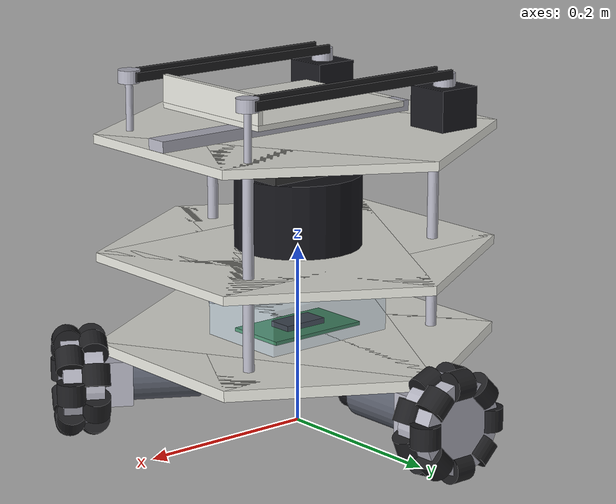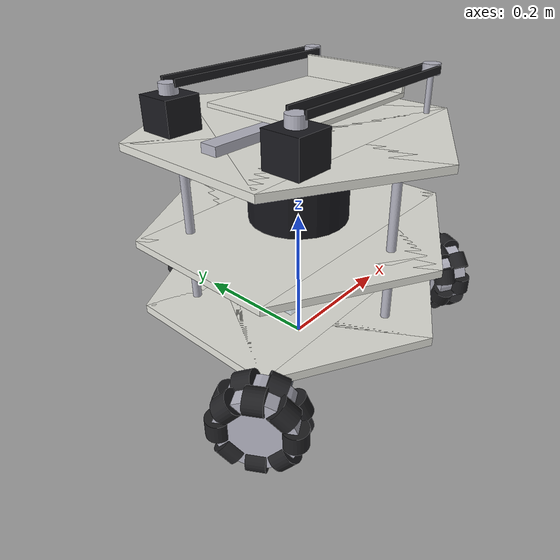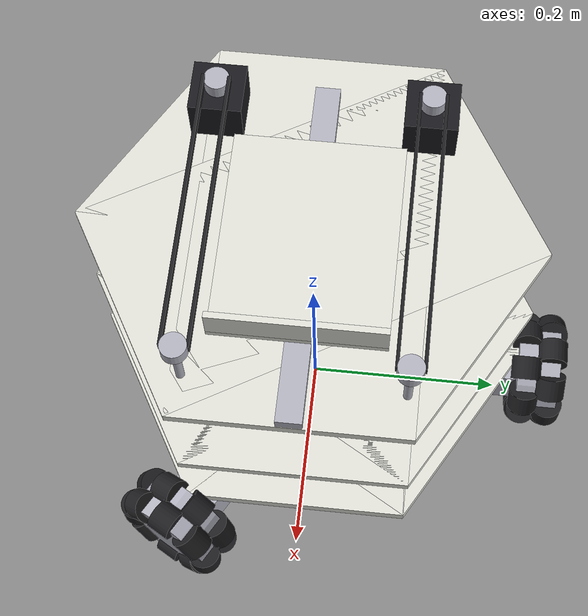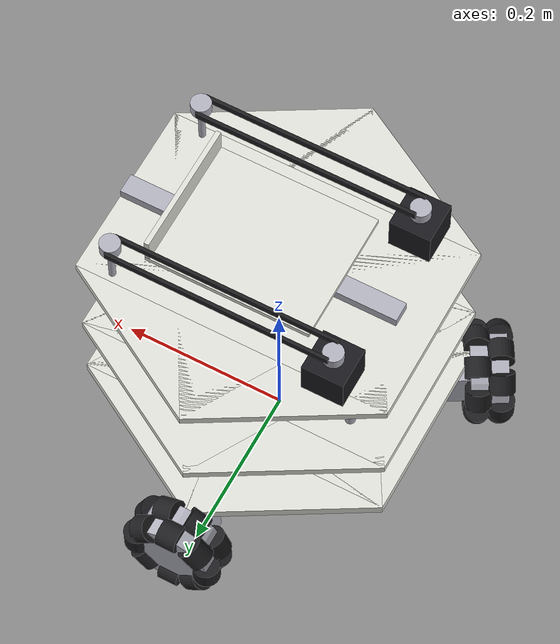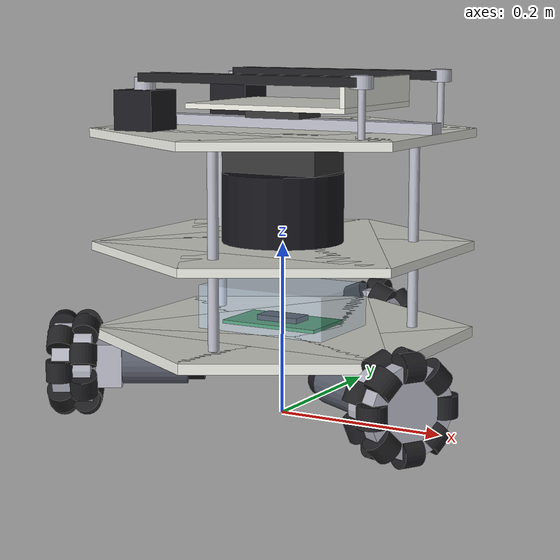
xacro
<?xml version="1.0"?>
<robot xmlns:xacro="http://www.ros.org/wiki/xacro" name="kiwi_robot">

  <!-- ==================== PROPERTIES ==================== -->
  <!-- Drive geometry (DO NOT CHANGE without updating omni_drive_node.py) -->
  <xacro:property name="wheel_radius" value="0.06"/>
  <xacro:property name="wheel_width" value="0.05"/>
  <xacro:property name="wheel_mass" value="0.9"/>
  <xacro:property name="wheel_offset" value="0.24"/>

  <!-- Omni wheel detail (visual only; collision stays a plain cylinder) -->
  <xacro:property name="roller_radius" value="0.016"/>
  <xacro:property name="roller_length" value="0.024"/>
  <xacro:property name="rollers_per_row" value="8"/>
  <xacro:property name="roller_row_dz" value="0.013"/>
  <xacro:property name="roller_ring_radius" value="${wheel_radius - roller_radius}"/>

  <!-- Hex plates (circumradius; vertices point at the wheels) -->
  <xacro:property name="plate_radius" value="0.22"/>
  <xacro:property name="base_plate_t" value="0.012"/>
  <xacro:property name="mid_plate_t" value="0.010"/>
  <xacro:property name="top_plate_t" value="0.010"/>
  <xacro:property name="chassis_mass" value="5.0"/>   <!-- base plate + battery/electronics -->

  <!-- Vertical layout, all measured from base_link origin (= base plate center) -->
  <xacro:property name="axle_drop" value="0.036"/>     <!-- wheel axle is this far below base_link -->
  <xacro:property name="mid_z" value="0.101"/>
  <xacro:property name="top_z" value="0.231"/>
  <xacro:property name="standoff_len" value="0.22"/>
  <xacro:property name="standoff_z" value="0.116"/>
  <xacro:property name="standoff_pos_r" value="0.15"/>
  <xacro:property name="standoff_radius" value="0.006"/>

  <!-- LiDAR (sits on the middle plate) -->
  <xacro:property name="lidar_radius" value="0.07"/>
  <xacro:property name="lidar_height" value="0.08"/>
  <xacro:property name="lidar_mass" value="0.6"/>
  <xacro:property name="lidar_z" value="${mid_z + mid_plate_t/2.0 + lidar_height/2.0}"/>

  <!-- Tray / linear axis on top plate -->
  <xacro:property name="top_surface_z" value="${top_z + top_plate_t/2.0}"/>
  <xacro:property name="rail_h" value="0.012"/>
  <xacro:property name="tray_travel" value="0.15"/>

  <!-- ==================== INERTIA MACROS ==================== -->
  <xacro:macro name="cylinder_inertia" params="m r h">
    <inertial>
      <mass value="${m}"/>
      <inertia ixx="${(m/12.0)*(3*r*r + h*h)}" ixy="0" ixz="0"
               iyy="${(m/12.0)*(3*r*r + h*h)}" iyz="0"
               izz="${(m/2.0)*r*r}"/>
    </inertial>
  </xacro:macro>

  <xacro:macro name="box_inertia" params="m x y z">
    <inertial>
      <mass value="${m}"/>
      <inertia ixx="${(m/12.0)*(y*y + z*z)}" ixy="0" ixz="0"
               iyy="${(m/12.0)*(x*x + z*z)}" iyz="0"
               izz="${(m/12.0)*(x*x + y*y)}"/>
    </inertial>
  </xacro:macro>

  <!-- ==================== MATERIALS ==================== -->
  <material name="dark_gray">
    <color rgba="0.2 0.2 0.2 1.0"/>
  </material>
  <material name="silver">
    <color rgba="0.7 0.7 0.75 1.0"/>
  </material>
  <material name="black">
    <color rgba="0.05 0.05 0.05 1.0"/>
  </material>
  <material name="green_accent">
    <color rgba="0.2 0.8 0.3 1.0"/>
  </material>
  <material name="blue_sensor">
    <color rgba="0.1 0.3 0.8 1.0"/>
  </material>
  <material name="plate_white">
    <color rgba="0.88 0.88 0.85 1.0"/>
  </material>
  <material name="acrylic">
    <color rgba="0.75 0.88 1.0 0.35"/>
  </material>
  <material name="motor_gray">
    <color rgba="0.35 0.37 0.42 1.0"/>
  </material>
  <material name="roller_gray">
    <color rgba="0.12 0.12 0.13 1.0"/>
  </material>
  <material name="pcb_green">
    <color rgba="0.1 0.45 0.2 1.0"/>
  </material>
  <material name="stepper_black">
    <color rgba="0.1 0.1 0.12 1.0"/>
  </material>
  <material name="lidar_black">
    <color rgba="0.08 0.08 0.1 1.0"/>
  </material>

  <!-- ==================== GENERIC PART MACROS ==================== -->
  <!-- A box-shaped link fixed to `parent`. Collision is off unless collide:=true -->
  <xacro:macro name="box_part" params="name xyz size_x size_y size_z mass material rpy:='0 0 0' collide:=false parent:=base_link">
    <link name="${name}">
      <xacro:box_inertia m="${mass}" x="${size_x}" y="${size_y}" z="${size_z}"/>
      <visual>
        <geometry><box size="${size_x} ${size_y} ${size_z}"/></geometry>
        <material name="${material}"/>
      </visual>
      <xacro:if value="${collide}">
        <collision>
          <geometry><box size="${size_x} ${size_y} ${size_z}"/></geometry>
        </collision>
      </xacro:if>
    </link>
    <joint name="${name}_joint" type="fixed">
      <parent link="${parent}"/>
      <child link="${name}"/>
      <origin xyz="${xyz}" rpy="${rpy}"/>
    </joint>
  </xacro:macro>

  <!-- A vertical cylinder-shaped link fixed to `parent` -->
  <xacro:macro name="cyl_part" params="name xyz radius length mass material rpy:='0 0 0' collide:=false parent:=base_link">
    <link name="${name}">
      <xacro:cylinder_inertia m="${mass}" r="${radius}" h="${length}"/>
      <visual>
        <geometry><cylinder radius="${radius}" length="${length}"/></geometry>
        <material name="${material}"/>
      </visual>
      <xacro:if value="${collide}">
        <collision>
          <geometry><cylinder radius="${radius}" length="${length}"/></geometry>
        </collision>
      </xacro:if>
    </link>
    <joint name="${name}_joint" type="fixed">
      <parent link="${parent}"/>
      <child link="${name}"/>
      <origin xyz="${xyz}" rpy="${rpy}"/>
    </joint>
  </xacro:macro>

  <xacro:macro name="hex_slab" params="r t yaw material collide">
    <visual>
      <origin xyz="0 0 0" rpy="0 0 ${yaw}"/>
      <geometry><box size="${r} ${sqrt(3)*r} ${t}"/></geometry>
      <material name="${material}"/>
    </visual>
    <xacro:if value="${collide}">
      <collision>
        <origin xyz="0 0 0" rpy="0 0 ${yaw}"/>
        <geometry><box size="${r} ${sqrt(3)*r} ${t}"/></geometry>
      </collision>
    </xacro:if>
  </xacro:macro>

  <xacro:macro name="hex_plate" params="r t material collide:=false">
    <xacro:hex_slab r="${r}" t="${t}" yaw="${radians(30)}"  material="${material}" collide="${collide}"/>
    <xacro:hex_slab r="${r}" t="${t}" yaw="${radians(90)}"  material="${material}" collide="${collide}"/>
    <xacro:hex_slab r="${r}" t="${t}" yaw="${radians(150)}" material="${material}" collide="${collide}"/>
  </xacro:macro>

  <!-- ==================== BASE FOOTPRINT ==================== -->
  <link name="base_footprint"/>

  <joint name="base_footprint_joint" type="fixed">
    <parent link="base_footprint"/>
    <child link="base_link"/>
    <origin xyz="0 0 ${wheel_radius + axle_drop}" rpy="0 0 0"/>
  </joint>

  <!-- ==================== BASE LINK (HEX BASE PLATE) ==================== -->
  <link name="base_link">
    <xacro:cylinder_inertia m="${chassis_mass}" r="${plate_radius}" h="${base_plate_t}"/>
    <xacro:hex_plate r="${plate_radius}" t="${base_plate_t}" material="plate_white" collide="true"/>
  </link>

  <!-- ==================== MIDDLE PLATE (SENSOR LAYER) ==================== -->
  <link name="mid_plate">
    <xacro:cylinder_inertia m="0.5" r="${plate_radius}" h="${mid_plate_t}"/>
    <xacro:hex_plate r="${plate_radius}" t="${mid_plate_t}" material="plate_white"/>
  </link>
  <joint name="mid_plate_joint" type="fixed">
    <parent link="base_link"/>
    <child link="mid_plate"/>
    <origin xyz="0 0 ${mid_z}" rpy="0 0 0"/>
  </joint>

  <!-- ==================== TOP PLATE (TRAY DECK) ==================== -->
  <link name="top_plate">
    <xacro:cylinder_inertia m="0.5" r="${plate_radius}" h="${top_plate_t}"/>
    <xacro:hex_plate r="${plate_radius}" t="${top_plate_t}" material="plate_white" collide="true"/>
  </link>
  <joint name="top_plate_joint" type="fixed">
    <parent link="base_link"/>
    <child link="top_plate"/>
    <origin xyz="0 0 ${top_z}" rpy="0 0 0"/>
  </joint>

  <!-- ==================== ALUMINUM STANDOFFS (3x, between wheel axes) ==================== -->
  <xacro:macro name="standoff" params="name angle_deg">
    <xacro:cyl_part name="${name}"
                    xyz="${standoff_pos_r*cos(radians(angle_deg))} ${standoff_pos_r*sin(radians(angle_deg))} ${standoff_z}"
                    radius="${standoff_radius}" length="${standoff_len}" mass="0.06" material="silver"/>
  </xacro:macro>
  <xacro:standoff name="standoff_1" angle_deg="30"/>
  <xacro:standoff name="standoff_2" angle_deg="150"/>
  <xacro:standoff name="standoff_3" angle_deg="270"/>

  <!-- ==================== MICROCONTROLLER ENCLOSURE (clear acrylic + ESP32) ==================== -->
  <xacro:box_part name="enclosure" xyz="0 0 ${base_plate_t/2.0 + 0.025}"
                  size_x="0.16" size_y="0.11" size_z="0.05" mass="0.3" material="acrylic"/>
  <xacro:box_part name="esp32_carrier" xyz="0 0 ${base_plate_t/2.0 + 0.006}"
                  size_x="0.12" size_y="0.07" size_z="0.004" mass="0.03" material="pcb_green"/>
  <xacro:box_part name="esp32_module" xyz="0 0 ${base_plate_t/2.0 + 0.011}"
                  size_x="0.052" size_y="0.028" size_z="0.006" mass="0.01" material="stepper_black"/>

  <!-- ==================== WHEEL + DC GEAR MOTOR MACRO ==================== -->
  <!-- Roller ring: recursive (xacro has no loops). Emits `n` roller visuals. -->
  <xacro:macro name="roller_ring" params="i n dz phase">
    <xacro:if value="${i &lt; n}">
      <xacro:property name="phi" value="${phase + i*2*pi/n}"/>
      <visual>
        <origin xyz="${roller_ring_radius*cos(phi)} ${roller_ring_radius*sin(phi)} ${dz}"
                rpy="${pi/2.0} 0 ${phi}"/>
        <geometry>
          <cylinder radius="${roller_radius}" length="${roller_length}"/>
        </geometry>
        <material name="roller_gray"/>
      </visual>
      <xacro:roller_ring i="${i+1}" n="${n}" dz="${dz}" phase="${phase}"/>
    </xacro:if>
  </xacro:macro>

  <xacro:macro name="kiwi_wheel" params="name angle_deg">
    <xacro:property name="angle_rad" value="${radians(angle_deg)}"/>
    <!-- motor center sits inboard of the wheel, along the wheel's axle (radial) -->
    <xacro:property name="motor_r" value="0.1475"/>

    <!-- DC gear motor (motor can + gearbox + encoder cap). Local +z = radially outward. -->
    <link name="${name}_hub">
      <xacro:box_inertia m="0.25" x="0.05" y="0.05" z="0.105"/>
      <visual>
        <geometry><cylinder radius="0.025" length="0.075"/></geometry>
        <material name="motor_gray"/>
      </visual>
      <visual>
        <origin xyz="0 0 0.0525" rpy="0 0 0"/>
        <geometry><box size="0.05 0.05 0.03"/></geometry>
        <material name="silver"/>
      </visual>
      <visual>
        <origin xyz="0 0 -0.0475" rpy="0 0 0"/>
        <geometry><cylinder radius="0.02" length="0.02"/></geometry>
        <material name="stepper_black"/>
      </visual>
    </link>
    <joint name="${name}_hub_joint" type="fixed">
      <parent link="base_link"/>
      <child link="${name}_hub"/>
      <origin xyz="${motor_r * cos(angle_rad)} ${motor_r * sin(angle_rad)} ${-axle_drop}"
              rpy="${pi/2.0} 0 ${angle_rad + pi/2.0}"/>
    </joint>

    <!-- Omni wheel link: hub + two staggered rows of rollers (visual),
         plain cylinder for collision/inertia (unchanged from before). -->
    <link name="${name}_wheel">
      <xacro:cylinder_inertia m="${wheel_mass}" r="${wheel_radius}" h="${wheel_width}"/>
      <visual>
        <geometry><cylinder radius="0.05" length="0.044"/></geometry>
        <material name="silver"/>
      </visual>
      <xacro:roller_ring i="0" n="${rollers_per_row}" dz="${roller_row_dz}"  phase="0"/>
      <xacro:roller_ring i="0" n="${rollers_per_row}" dz="${-roller_row_dz}" phase="${pi/rollers_per_row}"/>
      <collision>
        <geometry>
          <cylinder radius="${wheel_radius}" length="${wheel_width}"/>
        </geometry>
      </collision>
    </link>
    <joint name="${name}_wheel_joint" type="continuous">
      <parent link="base_link"/>
      <child link="${name}_wheel"/>
      <!-- Position stays at angle_rad (unchanged). The +pi/2 on yaw makes the
           spin axis radial, so the rolling direction is tangential (needed
           for turning and holonomic strafing). -->
      <origin xyz="${wheel_offset * cos(angle_rad)} ${wheel_offset * sin(angle_rad)} ${-axle_drop}"
              rpy="${pi/2.0} 0 ${angle_rad + pi/2.0}"/>
      <axis xyz="0 0 1"/>
      <dynamics damping="0.01" friction="0.005"/>
    </joint>
  </xacro:macro>

  <!-- Instantiate 3 wheels at 120 degree intervals (unchanged) -->
  <xacro:kiwi_wheel name="front"      angle_deg="90"/>
  <xacro:kiwi_wheel name="rear_left"  angle_deg="210"/>
  <xacro:kiwi_wheel name="rear_right" angle_deg="-30"/>

  <!-- ==================== LIDAR SENSOR (center of middle plate) ==================== -->
  <link name="lidar_link">
    <xacro:cylinder_inertia m="${lidar_mass}" r="${lidar_radius}" h="${lidar_height}"/>
    <visual>
      <geometry>
        <cylinder radius="${lidar_radius}" length="${lidar_height}"/>
      </geometry>
      <material name="lidar_black"/>
    </visual>
    <collision>
      <geometry>
        <cylinder radius="${lidar_radius}" length="${lidar_height}"/>
      </geometry>
    </collision>
  </link>
  <joint name="lidar_joint" type="fixed">
    <parent link="base_link"/>
    <child link="lidar_link"/>
    <origin xyz="0 0 ${lidar_z}" rpy="0 0 0"/>
  </joint>

  <!-- Laser rangefinder module hanging under the top plate (visual only) -->
  <xacro:box_part name="rangefinder_module"
                  xyz="0 0 ${top_z - top_plate_t/2.0 - 0.02}"
                  size_x="0.12" size_y="0.07" size_z="0.04" mass="0.1" material="dark_gray"/>

  <!-- ==================== TRAY DRIVE: STEPPERS + BELTS ==================== -->
  <!-- Stepper A1 (+y) and T1 (-y) at the rear of the top plate -->
  <xacro:box_part name="stepper_a1" xyz="-0.12 0.10 ${top_surface_z + 0.0225}"
                  size_x="0.05" size_y="0.05" size_z="0.045" mass="0.3" material="stepper_black"/>
  <xacro:box_part name="stepper_t1" xyz="-0.12 -0.10 ${top_surface_z + 0.0225}"
                  size_x="0.05" size_y="0.05" size_z="0.045" mass="0.3" material="stepper_black"/>

  <!-- Drive pulleys on the stepper shafts -->
  <xacro:cyl_part name="timing_pulley_a1" xyz="-0.12 0.10 ${top_surface_z + 0.045 + 0.007}"
                  radius="0.012" length="0.014" mass="0.02" material="silver"/>
  <xacro:cyl_part name="timing_pulley_t1" xyz="-0.12 -0.10 ${top_surface_z + 0.045 + 0.007}"
                  radius="0.012" length="0.014" mass="0.02" material="silver"/>

  <!-- Idler (tensioning) pulleys at the front on posts -->
  <xacro:cyl_part name="idler_post_a1" xyz="0.15 0.10 ${top_surface_z + 0.026}"
                  radius="0.004" length="0.052" mass="0.02" material="silver"/>
  <xacro:cyl_part name="idler_post_t1" xyz="0.15 -0.10 ${top_surface_z + 0.026}"
                  radius="0.004" length="0.052" mass="0.02" material="silver"/>
  <xacro:cyl_part name="idler_pulley_a1" xyz="0.15 0.10 ${top_surface_z + 0.052 + 0.007}"
                  radius="0.012" length="0.014" mass="0.02" material="silver"/>
  <xacro:cyl_part name="idler_pulley_t1" xyz="0.15 -0.10 ${top_surface_z + 0.052 + 0.007}"
                  radius="0.012" length="0.014" mass="0.02" material="silver"/>

  <!-- Timing belt runs (visual only): 2 runs per side, wrapped around each pulley pair -->
  <xacro:box_part name="belt_a1_outer" xyz="0.015 0.112 ${top_surface_z + 0.059}"
                  size_x="0.27" size_y="0.003" size_z="0.010" mass="0.03" material="roller_gray"/>
  <xacro:box_part name="belt_a1_inner" xyz="0.015 0.088 ${top_surface_z + 0.059}"
                  size_x="0.27" size_y="0.003" size_z="0.010" mass="0.03" material="roller_gray"/>
  <xacro:box_part name="belt_t1_outer" xyz="0.015 -0.112 ${top_surface_z + 0.059}"
                  size_x="0.27" size_y="0.003" size_z="0.010" mass="0.03" material="roller_gray"/>
  <xacro:box_part name="belt_t1_inner" xyz="0.015 -0.088 ${top_surface_z + 0.059}"
                  size_x="0.27" size_y="0.003" size_z="0.010" mass="0.03" material="roller_gray"/>

  <!-- ==================== LINEAR GUIDE RAIL ==================== -->
  <xacro:box_part name="linear_guide_rail" xyz="0.02 0 ${top_surface_z + rail_h/2.0}"
                  size_x="0.34" size_y="0.024" size_z="${rail_h}" mass="0.2" material="silver"/>

  <!-- ==================== CARRIAGE / SLIDING TRAY (prismatic, +x = out the front flat) ==================== -->
  <link name="tray_link">
    <xacro:box_inertia m="0.5" x="0.20" y="0.16" z="0.03"/>
    <!-- carriage block riding on the rail -->
    <visual>
      <origin xyz="0 0 0" rpy="0 0 0"/>
      <geometry><box size="0.07 0.05 0.012"/></geometry>
      <material name="dark_gray"/>
    </visual>
    <!-- tray floor -->
    <visual>
      <origin xyz="0.02 0 0.009" rpy="0 0 0"/>
      <geometry><box size="0.20 0.16 0.006"/></geometry>
      <material name="plate_white"/>
    </visual>
    <collision>
      <origin xyz="0.02 0 0.009" rpy="0 0 0"/>
      <geometry><box size="0.20 0.16 0.006"/></geometry>
    </collision>
    <!-- front lip -->
    <visual>
      <origin xyz="0.117 0 0.027" rpy="0 0 0"/>
      <geometry><box size="0.006 0.16 0.03"/></geometry>
      <material name="plate_white"/>
    </visual>
    <collision>
      <origin xyz="0.117 0 0.027" rpy="0 0 0"/>
      <geometry><box size="0.006 0.16 0.03"/></geometry>
    </collision>
  </link>
  <joint name="tray_joint" type="prismatic">
    <parent link="base_link"/>
    <child link="tray_link"/>
    <origin xyz="0 0 ${top_surface_z + rail_h + 0.006}" rpy="0 0 0"/>
    <axis xyz="1 0 0"/>
    <limit lower="0.0" upper="${tray_travel}" effort="60" velocity="0.3"/>
    <dynamics damping="5.0" friction="1.0"/>
  </joint>

  <!-- ==================== GAZEBO MATERIAL COLORS ==================== -->
  <gazebo reference="base_link">
    <material>Gazebo/White</material>
  </gazebo>
  <gazebo reference="top_plate">
    <material>Gazebo/White</material>
  </gazebo>
  <gazebo reference="front_hub">
    <material>Gazebo/Grey</material>
  </gazebo>
  <gazebo reference="rear_left_hub">
    <material>Gazebo/Grey</material>
  </gazebo>
  <gazebo reference="rear_right_hub">
    <material>Gazebo/Grey</material>
  </gazebo>
  <gazebo reference="front_wheel">
    <material>Gazebo/Black</material>
    <mu1>1.0</mu1>
    <mu2>1.0</mu2>
  </gazebo>
  <gazebo reference="rear_left_wheel">
    <material>Gazebo/Black</material>
    <mu1>1.0</mu1>
    <mu2>1.0</mu2>
  </gazebo>
  <gazebo reference="rear_right_wheel">
    <material>Gazebo/Black</material>
    <mu1>1.0</mu1>
    <mu2>1.0</mu2>
  </gazebo>
  <gazebo reference="lidar_link">
    <material>Gazebo/Black</material>
  </gazebo>
  <!-- Tray: moderate friction so cargo doesn't slide off during acceleration -->
  <gazebo reference="tray_link">
    <mu1>0.8</mu1>
    <mu2>0.8</mu2>
  </gazebo>

  <!-- ==================== GAZEBO PLUGINS ==================== -->
  <gazebo>
    <plugin filename="gz-sim-joint-state-publisher-system"
            name="gz::sim::systems::JointStatePublisher">
      <joint_name>front_wheel_joint</joint_name>
      <joint_name>rear_left_wheel_joint</joint_name>
      <joint_name>rear_right_wheel_joint</joint_name>
      <joint_name>tray_joint</joint_name>
    </plugin>
  </gazebo>

  <!-- Ground-truth odometry: independent of how the wheels are actuated,
       so switching drive schemes never breaks odom/TF for SLAM. -->
  <gazebo>
    <plugin filename="gz-sim-odometry-publisher-system"
            name="gz::sim::systems::OdometryPublisher">
      <odom_frame>odom</odom_frame>
      <robot_base_frame>base_footprint</robot_base_frame>
      <odom_topic>model/kiwi_robot/odometry</odom_topic>
      <odom_publish_frequency>20</odom_publish_frequency>
      <tf_topic>tf</tf_topic>
      <dimensions>2</dimensions>
    </plugin>
  </gazebo>

  <!-- Per-wheel velocity controllers (unchanged).
       Each wheel is commanded independently by omni_drive_node.py,
       which converts cmd_vel (vx, vy, wz) into these 3 wheel speeds. -->
  <gazebo>
    <plugin filename="gz-sim-joint-controller-system"
            name="gz::sim::systems::JointController">
      <joint_name>front_wheel_joint</joint_name>
      <topic>/model/kiwi_robot/joint/front_wheel_joint/cmd_vel</topic>
      <use_force_commands>false</use_force_commands>
      <p_gain>2.0</p_gain>
    </plugin>
  </gazebo>
  <gazebo>
    <plugin filename="gz-sim-joint-controller-system"
            name="gz::sim::systems::JointController">
      <joint_name>rear_left_wheel_joint</joint_name>
      <topic>/model/kiwi_robot/joint/rear_left_wheel_joint/cmd_vel</topic>
      <use_force_commands>false</use_force_commands>
      <p_gain>2.0</p_gain>
    </plugin>
  </gazebo>
  <gazebo>
    <plugin filename="gz-sim-joint-controller-system"
            name="gz::sim::systems::JointController">
      <joint_name>rear_right_wheel_joint</joint_name>
      <topic>/model/kiwi_robot/joint/rear_right_wheel_joint/cmd_vel</topic>
      <use_force_commands>false</use_force_commands>
      <p_gain>2.0</p_gain>
    </plugin>
  </gazebo>

  <!-- Tray position controller: command a position in meters, 0.0 to 0.15
       e.g. gz topic -t /model/kiwi_robot/joint/tray_joint/cmd_pos -m gz.msgs.Double -p 'data: 0.12' -->
  <gazebo>
    <plugin filename="gz-sim-joint-position-controller-system"
            name="gz::sim::systems::JointPositionController">
      <joint_name>tray_joint</joint_name>
      <topic>/model/kiwi_robot/joint/tray_joint/cmd_pos</topic>
      <p_gain>400</p_gain>
      <i_gain>0</i_gain>
      <d_gain>40</d_gain>
      <cmd_max>60</cmd_max>
      <cmd_min>-60</cmd_min>
    </plugin>
  </gazebo>

  <!-- Lidar sensor (unchanged) -->
  <gazebo reference="lidar_link">
    <sensor name="lidar" type="gpu_lidar">
      <always_on>true</always_on>
      <update_rate>10</update_rate>
      <topic>scan</topic>
      <gz_frame_id>lidar_link</gz_frame_id>
      <lidar>
        <scan>
          <horizontal>
            <samples>360</samples>
            <resolution>1</resolution>
            <min_angle>-3.14159</min_angle>
            <max_angle>3.14159</max_angle>
          </horizontal>
        </scan>
        <range>
          <min>0.12</min>
          <max>10.0</max>
          <resolution>0.01</resolution>
        </range>
      </lidar>
    </sensor>
  </gazebo>

</robot>
